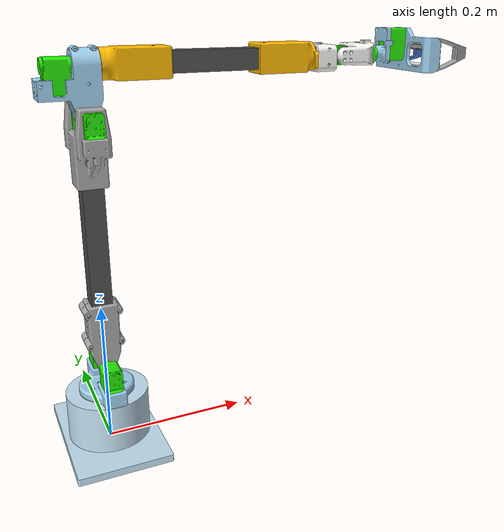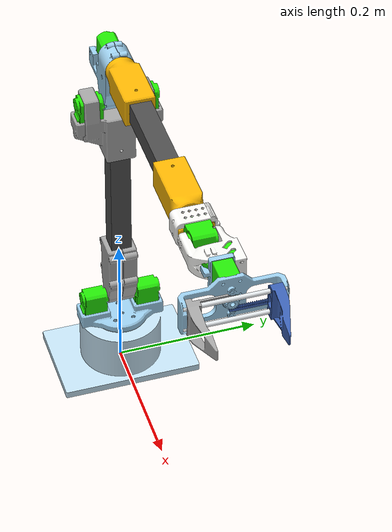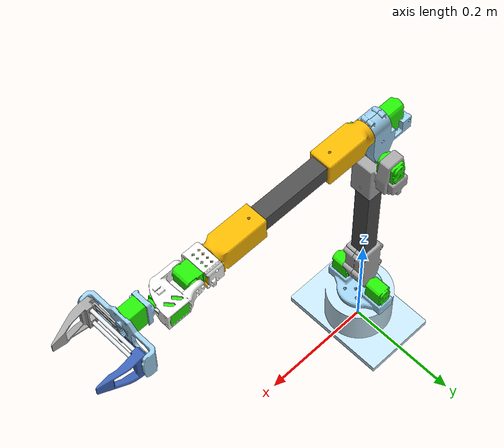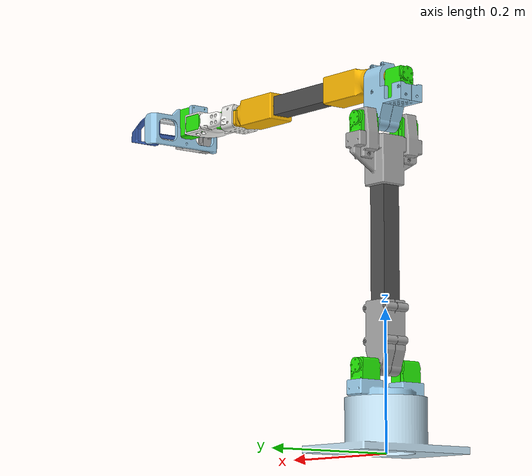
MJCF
<?xml version='1.0' encoding='utf-8'?>
<mujoco model="sopo">
  <compiler angle="radian" />
  <option>
    <flag contact="disable" gravity="disable" />
  </option>
  <asset>
    <mesh name="simple61814" content_type="model/stl" file="assets/simple61814.stl" />
    <mesh name="simple61814_collision" content_type="model/stl" file="assets/simple61814_collision.stl" />
    <mesh name="simple_sm8512bl" content_type="model/stl" file="assets/simple_sm8512bl.stl" />
    <mesh name="simple_sm8512bl_collision" content_type="model/stl" file="assets/simple_sm8512bl_collision.stl" />
    <mesh name="sopo_desktop_base" content_type="model/stl" file="assets/sopo_desktop_base.stl" />
    <mesh name="sopo_desktop_base_collision" content_type="model/stl" file="assets/sopo_desktop_base_collision.stl" />
    <mesh name="joint_2_simple_sts3250" content_type="model/stl" file="assets/joint_2_simple_sts3250.stl" />
    <mesh name="joint_2_simple_sts3250_collision" content_type="model/stl" file="assets/joint_2_simple_sts3250_collision.stl" />
    <mesh name="link1" content_type="model/stl" file="assets/link1.stl" />
    <mesh name="link1_collision" content_type="model/stl" file="assets/link1_collision.stl" />
    <mesh name="joint_2_simple_sts3250__2" content_type="model/stl" file="assets/joint_2_simple_sts3250__2.stl" />
    <mesh name="joint_2_simple_sts3250__2_collision" content_type="model/stl" file="assets/joint_2_simple_sts3250__2_collision.stl" />
    <mesh name="link_2_pipe" content_type="model/stl" file="assets/link_2_pipe.stl" />
    <mesh name="link_2_holder" content_type="model/stl" file="assets/link_2_holder.stl" />
    <mesh name="link_2_holder_collision" content_type="model/stl" file="assets/link_2_holder_collision.stl" />
    <mesh name="link_2_holder__2" content_type="model/stl" file="assets/link_2_holder__2.stl" />
    <mesh name="link_2_holder__2_collision" content_type="model/stl" file="assets/link_2_holder__2_collision.stl" />
    <mesh name="joint_3_simple_sts3250" content_type="model/stl" file="assets/joint_3_simple_sts3250.stl" />
    <mesh name="joint_3_simple_sts3250_collision" content_type="model/stl" file="assets/joint_3_simple_sts3250_collision.stl" />
    <mesh name="joint_3_simple_sts3250__2" content_type="model/stl" file="assets/joint_3_simple_sts3250__2.stl" />
    <mesh name="joint_3_simple_sts3250__2_collision" content_type="model/stl" file="assets/joint_3_simple_sts3250__2_collision.stl" />
    <mesh name="link_3" content_type="model/stl" file="assets/link_3.stl" />
    <mesh name="link_3_collision" content_type="model/stl" file="assets/link_3_collision.stl" />
    <mesh name="joint_4_simple_sts3250" content_type="model/stl" file="assets/joint_4_simple_sts3250.stl" />
    <mesh name="joint_4_simple_sts3250_collision" content_type="model/stl" file="assets/joint_4_simple_sts3250_collision.stl" />
    <mesh name="link_4_pipe" content_type="model/stl" file="assets/link_4_pipe.stl" />
    <mesh name="link_4_hold_1" content_type="model/stl" file="assets/link_4_hold_1.stl" />
    <mesh name="link_4_hold_1_collision" content_type="model/stl" file="assets/link_4_hold_1_collision.stl" />
    <mesh name="simple_6704" content_type="model/stl" file="assets/simple_6704.stl" />
    <mesh name="simple_6704__2" content_type="model/stl" file="assets/simple_6704__2.stl" />
    <mesh name="link_4_holder2" content_type="model/stl" file="assets/link_4_holder2.stl" />
    <mesh name="link_4_holder2_collision" content_type="model/stl" file="assets/link_4_holder2_collision.stl" />
    <mesh name="joint_5_simple_sts3215_12v" content_type="model/stl" file="assets/joint_5_simple_sts3215_12v.stl" />
    <mesh name="joint_5_simple_sts3215_12v_collision" content_type="model/stl" file="assets/joint_5_simple_sts3215_12v_collision.stl" />
    <mesh name="link_4_holder_3" content_type="model/stl" file="assets/link_4_holder_3.stl" />
    <mesh name="link_4_holder_3_collision" content_type="model/stl" file="assets/link_4_holder_3_collision.stl" />
    <mesh name="link_5" content_type="model/stl" file="assets/link_5.stl" />
    <mesh name="link_5_collision" content_type="model/stl" file="assets/link_5_collision.stl" />
    <mesh name="joint_6_simple_sts3215_12v" content_type="model/stl" file="assets/joint_6_simple_sts3215_12v.stl" />
    <mesh name="joint_6_simple_sts3215_12v_collision" content_type="model/stl" file="assets/joint_6_simple_sts3215_12v_collision.stl" />
    <mesh name="rod_d6_125" content_type="model/stl" file="assets/rod_d6_125.stl" />
    <mesh name="rod_d6_125__2" content_type="model/stl" file="assets/rod_d6_125__2.stl" />
    <mesh name="simple_motor" content_type="model/stl" file="assets/simple_motor.stl" />
    <mesh name="simple_motor_collision" content_type="model/stl" file="assets/simple_motor_collision.stl" />
    <mesh name="ee" content_type="model/stl" file="assets/ee.stl" />
    <mesh name="ee_collision" content_type="model/stl" file="assets/ee_collision.stl" />
    <mesh name="right_finger" content_type="model/stl" file="assets/right_finger.stl" />
    <mesh name="right_finger_collision" content_type="model/stl" file="assets/right_finger_collision.stl" />
    <mesh name="left_finger" content_type="model/stl" file="assets/left_finger.stl" />
    <mesh name="left_finger_collision" content_type="model/stl" file="assets/left_finger_collision.stl" />
  </asset>
  <worldbody>
    <geom pos="0 0 0.0637" quat="0.707107 0 0 -0.707107" type="mesh" contype="0" conaffinity="0" group="1" rgba="0.917647 0.917647 0.917647 1" density="0" mesh="simple61814" />
    <geom pos="0 0 0.0637" quat="0.707107 0 0 -0.707107" type="mesh" contype="0" conaffinity="0" group="1" rgba="0.917647 0.917647 0.917647 1" density="0" mesh="simple_sm8512bl" />
    <geom pos="0 0 0.0637" quat="0.707107 0 0 -0.707107" type="mesh" contype="0" conaffinity="0" group="1" rgba="0.768627 0.886275 0.952941 1" density="0" mesh="sopo_desktop_base" />
    <body name="link_1" pos="0 0 0.0777" quat="9.38186e-07 -0.707107 0.707107 -9.38186e-07">
      <inertial pos="6.52594e-12 1.26882e-07 -0.00833285" quat="1.35502e-06 0.707107 1.35502e-06 0.707107" mass="1.192" diaginertia="0.00129419 0.00113655 0.000400582" />
      <joint name="joint_1" range="-3.14159 3.14159" axis="0 0 -1" damping="20" />
      <geom pos="0 0 -0.0632" quat="1.32679e-06 1 0 0" type="mesh" contype="0" conaffinity="0" group="1" rgba="0.141176 0.917647 0.0235294 1" density="0" mesh="joint_2_simple_sts3250" />
      <geom pos="0 0 -0.0632" quat="1.32679e-06 1 0 0" type="mesh" contype="0" conaffinity="0" group="1" rgba="0.615686 0.811765 0.929412 1" density="0" mesh="link1" />
      <geom pos="0 0 -0.0632" quat="1.32679e-06 1 0 0" type="mesh" contype="0" conaffinity="0" group="1" rgba="0.141176 0.917647 0.0235294 1" density="0" mesh="joint_2_simple_sts3250__2" />
      <body name="link_2" pos="-0.0185 0 -0.0412" quat="0.499998 0.5 -0.500002 -0.5">
        <inertial pos="-8.93706e-06 -0.221925 -0.018501" quat="0.70711 0.707103 -7.09861e-07 -2.83945e-05" mass="0.424" diaginertia="0.0067438 0.00647589 0.000364976" />
        <joint name="joint_2" range="-1.65806 1.65806" damping="20" />
        <geom pos="0 -0.0219 -0.0185" quat="0.499998 0.5 0.5 -0.500002" type="mesh" contype="0" conaffinity="0" group="1" rgba="0.301961 0.301961 0.301961 1" density="0" mesh="link_2_pipe" />
        <geom pos="5.48697e-07 -0.3428 -0.0185" quat="0.707105 0 0.707108 0" type="mesh" contype="0" conaffinity="0" group="1" rgba="0.647059 0.647059 0.647059 1" density="0" mesh="link_2_holder" />
        <geom pos="0 -0.022 -0.0185" quat="0.499998 0.5 0.5 -0.500002" type="mesh" contype="0" conaffinity="0" group="1" rgba="0.647059 0.647059 0.647059 1" density="0" mesh="link_2_holder__2" />
        <geom pos="5.48697e-07 -0.3428 -0.0185" quat="0.707105 0 0.707108 0" type="mesh" contype="0" conaffinity="0" group="1" rgba="0.141176 0.917647 0.0235294 1" density="0" mesh="joint_3_simple_sts3250" />
        <geom pos="5.48697e-07 -0.3428 -0.0185" quat="0.707105 0 0.707108 0" type="mesh" contype="0" conaffinity="0" group="1" rgba="0.141176 0.917647 0.0235294 1" density="0" mesh="joint_3_simple_sts3250__2" />
        <body name="link_3" pos="5.48697e-07 -0.3428 0" quat="0.707105 0 0 0.707108">
          <inertial pos="-0.0425406 0.0202045 -0.0185133" quat="0.293171 0.643735 -0.292471 0.643519" mass="0.1305" diaginertia="9.52165e-05 7.12122e-05 4.79125e-05" />
          <joint name="joint_3" range="-1.5708 1.5708" damping="20" />
          <geom pos="-0.0619 -0.068 -0.0185" quat="9.38184e-07 -0.707105 9.38187e-07 0.707108" type="mesh" contype="0" conaffinity="0" group="1" rgba="0.615686 0.811765 0.929412 1" density="0" mesh="link_3" />
          <geom pos="-0.0619 -0.068 -0.0185" quat="9.38184e-07 -0.707105 9.38187e-07 0.707108" type="mesh" contype="0" conaffinity="0" group="1" rgba="0.141176 0.917647 0.0235294 1" density="0" mesh="joint_4_simple_sts3250" />
          <body name="link_4" pos="-0.0619 0.013 -0.0185" quat="0.499998 -0.5 0.5 0.500002">
            <inertial pos="4.38776e-05 -0.000294806 -0.223898" quat="0.707376 -0.000982645 0.000714231 0.706836" mass="0.307" diaginertia="0.00434085 0.00433331 8.21009e-05" />
            <joint name="joint_4" range="-3.14159 3.14159" axis="0 0 -1" damping="20" />
            <geom pos="0 -4.64429e-07 -0.081" quat="0.707105 -0.707108 0 0" type="mesh" contype="0" conaffinity="0" group="1" rgba="0.301961 0.301961 0.301961 1" density="0" mesh="link_4_pipe" />
            <geom pos="0 0 -0.081" quat="0.707105 -0.707108 0 0" type="mesh" contype="0" conaffinity="0" group="1" rgba="0.980392 0.713725 0.00392157 1" density="0" mesh="link_4_hold_1" />
            <geom pos="0 0 -0.081" quat="0.707105 -0.707108 0 0" type="mesh" contype="0" conaffinity="0" group="1" rgba="0.231373 0.380392 0.705882 1" density="0" mesh="simple_6704" />
            <geom pos="0 0 -0.081" quat="0.707105 -0.707108 0 0" type="mesh" contype="0" conaffinity="0" group="1" rgba="0.231373 0.380392 0.705882 1" density="0" mesh="simple_6704__2" />
            <geom pos="0 -9.3933e-07 -0.433326" quat="9.38184e-07 9.38187e-07 0.707108 0.707105" type="mesh" contype="0" conaffinity="0" group="1" rgba="0.980392 0.713725 0.00392157 1" density="0" mesh="link_4_holder2" />
            <geom pos="0 -9.3933e-07 -0.433326" quat="9.38184e-07 9.38187e-07 0.707108 0.707105" type="mesh" contype="0" conaffinity="0" group="1" rgba="0.141176 0.917647 0.0235294 1" density="0" mesh="joint_5_simple_sts3215_12v" />
            <geom pos="0 -9.3933e-07 -0.433326" quat="9.38184e-07 9.38187e-07 0.707108 0.707105" type="mesh" contype="0" conaffinity="0" group="1" rgba="0.964706 0.964706 0.952941 1" density="0" mesh="link_4_holder_3" />
            <body name="link_5" pos="0.0185 -9.39318e-07 -0.372226" quat="9.38184e-07 0.707105 -9.38187e-07 0.707108">
              <inertial pos="-0.0377441 -0.000117368 -0.0276506" quat="0.67854 0.199612 0.197339 0.678819" mass="0.087" diaginertia="4.33555e-05 3.21186e-05 2.19929e-05" />
              <joint name="joint_5" range="-1.74533 1.74533" axis="0 0 -1" damping="20" />
              <geom pos="-0.0611 1.2e-11 -0.0185" quat="0.499998 0.5 0.5 -0.500002" type="mesh" contype="0" conaffinity="0" group="1" rgba="0.964706 0.964706 0.952941 1" density="0" mesh="link_5" />
              <geom pos="-0.0611 1.2e-11 -0.0185" quat="0.499998 0.5 0.5 -0.500002" type="mesh" contype="0" conaffinity="0" group="1" rgba="0.141176 0.917647 0.0235294 1" density="0" mesh="joint_6_simple_sts3215_12v" />
              <body name="ee" pos="-0.0611 1.2e-11 -0.0185" quat="0.707105 0 0.707108 0">
                <inertial pos="-0.000252775 -0.00393924 -0.0422792" quat="0.279482 0.65037 0.283021 0.647154" mass="0.522" diaginertia="0.000869896 0.000817712 0.000276547" />
                <joint name="joint_6" axis="0 0 -1" damping="20" />
                <geom pos="-3.99459e-05 -0.0269979 -0.079" quat="0.707105 -0.707108 0 0" type="mesh" contype="0" conaffinity="0" group="1" rgba="0.898039 0.917647 0.929412 1" density="0" mesh="rod_d6_125" />
                <geom pos="-3.99459e-05 0.00500208 -0.047" quat="0.707105 -0.707108 0 0" type="mesh" contype="0" conaffinity="0" group="1" rgba="0.898039 0.917647 0.929412 1" density="0" mesh="rod_d6_125__2" />
                <geom pos="-3.99459e-05 2.07734e-06 -0.052" quat="1.32679e-06 -1 0 0" type="mesh" contype="0" conaffinity="0" group="1" rgba="0.141176 0.917647 0.0235294 1" density="0" mesh="simple_motor" />
                <geom pos="-3.99459e-05 2.07734e-06 -0.052" quat="1.32679e-06 1 0 0" type="mesh" contype="0" conaffinity="0" group="1" rgba="0.615686 0.811765 0.929412 1" density="0" mesh="ee" />
                <body name="right_finger" pos="-0.0580399 -0.0159979 -0.063" quat="0.499998 0.5 -0.500002 -0.5">
                  <inertial pos="-0.0144477 -0.0150978 -0.0105871" quat="0.577873 0.508915 -0.474326 0.426713" mass="0.154" diaginertia="0.000104146 9.15897e-05 3.98104e-05" />
                  <joint name="right_finger_joint" type="slide" range="-0.042 0" damping="20" />
                  <geom pos="-0.016 0.011 -0.058" quat="0.499998 0.5 0.5 -0.500002" type="mesh" contype="0" conaffinity="0" group="1" rgba="0.647059 0.647059 0.647059 1" density="0" mesh="right_finger" />
                </body>
                <body name="left_finger" pos="0.0579601 -0.0159979 -0.063" quat="0.499998 -0.5 0.500002 -0.5">
                  <inertial pos="-0.0175523 0.0150978 -0.0105871" quat="0.474326 0.426713 -0.577873 0.508915" mass="0.154" diaginertia="0.000104146 9.15897e-05 3.98104e-05" />
                  <joint name="left_finger_joint" type="slide" range="-0.042 0" damping="20" />
                  <geom pos="-0.016 -0.011 -0.058" quat="0.499998 -0.5 -0.5 -0.500002" type="mesh" contype="0" conaffinity="0" group="1" rgba="0.231373 0.380392 0.705882 1" density="0" mesh="left_finger" />
                </body>
              </body>
            </body>
          </body>
        </body>
      </body>
    </body>
  </worldbody>
  <actuator>
    <position name="act_joint_1" joint="joint_1" kp="2000" forcerange="-100000 100000" ctrlrange="-3.14159 3.14159" />
    <position name="act_joint_2" joint="joint_2" kp="2000" forcerange="-100000 100000" ctrlrange="-1.65806 1.65806" />
    <position name="act_joint_3" joint="joint_3" kp="2000" forcerange="-100000 100000" ctrlrange="-1.5708 1.5708" />
    <position name="act_joint_4" joint="joint_4" kp="2000" forcerange="-100000 100000" ctrlrange="-3.14159 3.14159" />
    <position name="act_joint_5" joint="joint_5" kp="2000" forcerange="-100000 100000" ctrlrange="-1.74533 1.74533" />
    <position name="act_joint_6" joint="joint_6" kp="2000" forcerange="-100000 100000" ctrlrange="-3.14159 3.14159" />
    <position name="act_right_finger_joint" joint="right_finger_joint" kp="2000" forcerange="-100000 100000" ctrlrange="-0.042 0" />
    <position name="act_left_finger_joint" joint="left_finger_joint" kp="2000" forcerange="-100000 100000" ctrlrange="-0.042 0" />
  </actuator>
</mujoco>
